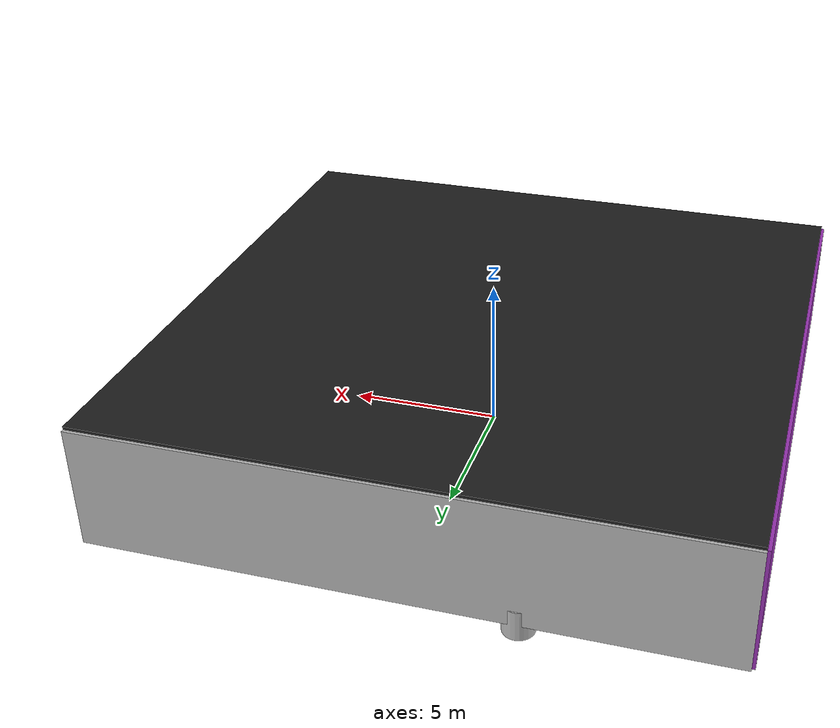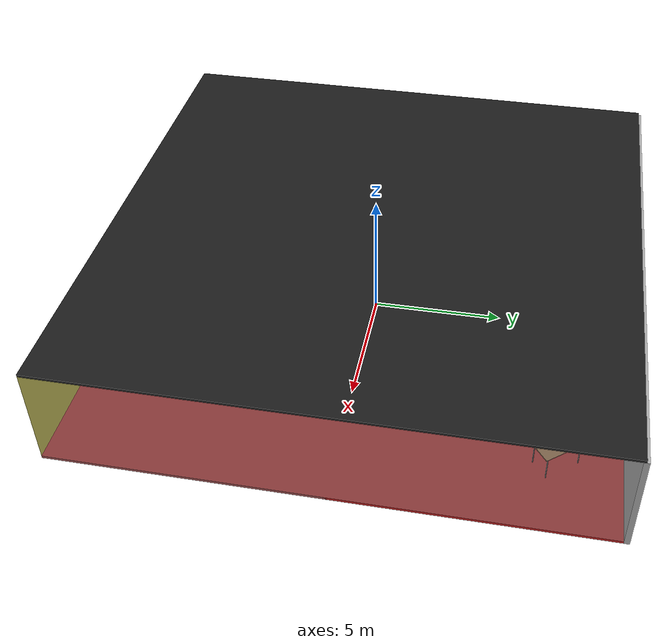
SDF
<sdf version="1.4">
 <world name="default">
  <physics type="ode">
   <max_step_size>0.001</max_step_size>
   <real_time_factor>1</real_time_factor>
   <real_time_update_rate>1000</real_time_update_rate>
   <gravity>0 0 -9.8</gravity>
  </physics>
  <scene><ambient>0.4 0.4 0.4 1</ambient><background>0.7 0.7 0.7 1</background><shadows>1</shadows></scene>
  <model name="Surrounding">
   <static>1</static>
   <link name="Ceiling">
    <collision name="Ceiling_Collision"><geometry><box><size>20 20 0.1</size></box></geometry></collision>
    <visual name="Ceiling_Visual">
     <geometry><box><size>20 20 0.1</size></box></geometry>
     <material>
      <script><uri>file://media/materials/scripts/gazebo.material</uri><name>Gazebo/Black</name></script>
     </material>
    </visual>
    <pose>0 0 4.05 0 0 0</pose>
   </link>
   <link name="Wall_South">
    <collision name="Wall_South_Collision">
     <geometry><box><size>20 0 4</size></box></geometry>
     <pose>0 0 2 0 -0 0</pose>
    </collision>
    <visual name="Wall_South_Visual">
     <pose>0 0 2 0 -0 0</pose>
     <geometry><box><size>20 0 4</size></box></geometry>
     <material>
      <script><uri>file://media/materials/scripts/gazebo.material</uri><name>Gazebo/Yellow</name></script>
     </material>
    </visual>
    <velocity_decay><linear>0</linear><angular>0</angular></velocity_decay>
    <pose>0 -10 0 0 -0 0</pose>
   </link>
   <link name="Wall_East">
    <collision name="Wall_21_Collision">
     <geometry><box><size>20 0 4</size></box></geometry>
     <pose>0 0 2 0 -0 0</pose>
    </collision>
    <visual name="Wall_21_Visual">
     <pose>0 0 2 0 -0 0</pose>
     <geometry><box><size>20 0 4</size></box></geometry>
     <material>
      <script><uri>file://media/materials/scripts/gazebo.material</uri><name>Gazebo/GreyTransparent</name></script>
     </material>
    </visual>
    <velocity_decay><linear>0</linear><angular>0</angular></velocity_decay>
    <pose>10 0 0 0 -0 1.5708</pose>
   </link>
   <link name="Wall_North">
    <collision name="Wall_22_Collision">
     <geometry><box><size>20 0.2 4</size></box></geometry>
     <pose>0 0 2 0 -0 0</pose>
    </collision>
    <visual name="Wall_22_Visual">
     <pose>0 0 2 0 -0 0</pose>
     <geometry><box><size>20 0.2 4</size></box></geometry>
     <material>
      <script><uri>file://media/materials/scripts/gazebo.material</uri><name>Gazebo/PioneerBody</name></script>
     </material>
    </visual>
    <velocity_decay><linear>0</linear><angular>0</angular></velocity_decay>
    <pose>0 10 0 0 -0 0</pose>
   </link>
   <link name="Wall_West">
    <collision name="Wall_23_Collision">
     <geometry><box><size>20 0.2 4</size></box></geometry>
     <pose>0 0 2 0 -0 0</pose>
    </collision>
    <visual name="Wall_23_Visual">
     <pose>0 0 2 0 -0 0</pose>
     <geometry><box><size>20 0.2 4</size></box></geometry>
     <material>
      <script><uri>file://media/materials/scripts/gazebo.material</uri><name>Gazebo/Purple</name></script>
     </material>
    </visual>
    <velocity_decay><linear>0</linear><angular>0</angular></velocity_decay>
    <pose>-10 0 0 0 0 -1.5708</pose>
   </link>
   <link name="Ground_link">
    <collision name="collision">
     <pose>0 0 .05 0 -0 0</pose>
     <geometry><box><size>20 20 0.1</size></box></geometry>
    </collision>
    <visual name="visual">
     <pose>0 0 .05 0 -0 0</pose>
     <geometry><box><size>20 20 0.1</size></box></geometry>
     <material>
      <script><uri>file://media/materials/scripts/gazebo.material</uri><name>Gazebo/RedGlow</name></script>
     </material>
    </visual>
   </link>
   <static>1</static>
  </model>
  <spherical_coordinates>
   <surface_model>EARTH_WGS84</surface_model>
   <latitude_deg>0</latitude_deg>
   <longitude_deg>0</longitude_deg>
   <elevation>0</elevation>
   <heading_deg>0</heading_deg>
  </spherical_coordinates>
  <light name="lightball_0" type="diffuse">
   <diffuse>0.8 0.8 0.8 1</diffuse>
   <specular>0.2 0.2 0.2 1</specular>
   <attenuation>
    <range>100</range>
    <constant>0.7</constant>
    <linear>0.01</linear>
    <quadratic>0.001</quadratic>
   </attenuation>
   <direction>-0.5 0.1 -0.9</direction>
   <pose>8.07591738034 4.89583031557 2.64531577721 0 0 0</pose>
  </light>
  <include><uri>model://table</uri><pose>-4.70475281671 -1.90079465788 0 0 0 0.479456385261</pose></include>
  <include>
   <uri>model://textured_shapes</uri>
   <pose>-2.6622635561 8.39241674369 0 0 0 0.580295244799</pose>
  </include>
  <include>
   <uri>model://textured_shapes</uri>
   <pose>1.54794492513 4.6290963053 0 0 0 2.88488669442</pose>
  </include>
  <include><uri>model://table</uri><pose>4.24454757522 0.635842117656 0 0 0 0.77434111603</pose></include>
  <include><uri>model://table</uri><pose>7.11964792218 7.56860241014 0 0 0 2.23995004246</pose></include>
 </world>
</sdf>

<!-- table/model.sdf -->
<sdf version="1.5">
  <model name="table">
    <static>true</static>
    <link name="link">
      <collision name="surface">
        <pose>0 0 1.0 0 0 0</pose>
        <geometry>
          <box>
            <size>1.5 0.8 0.03</size>
          </box>
        </geometry>
        <surface>
          <friction>
            <ode>
              <mu>0.6</mu>
              <mu2>0.6</mu2>
            </ode>
          </friction>
        </surface>
      </collision>
      <visual name="visual1">
        <pose>0 0 1.0 0 0 0</pose>
        <geometry>
          <box>
            <size>1.5 0.8 0.03</size>
          </box>
        </geometry>
        <material>
          <script>
            <uri>model://media/materials/scripts/gazebo.material</uri>
            <name>Gazebo/Wood</name>
          </script>
        </material>
      </visual>
      <collision name="front_left_leg">
        <pose>0.68 0.38 0.5 0 0 0</pose>
        <geometry>
          <cylinder>
            <radius>0.02</radius>
            <length>1.0</length>
          </cylinder>
        </geometry>
      </collision>
      <visual name="front_left_leg">
        <pose>0.68 0.38 0.5 0 0 0</pose>
        <geometry>
          <cylinder>
            <radius>0.02</radius>
            <length>1.0</length>
          </cylinder>
        </geometry>
        <material>
          <script>
            <uri>model://media/materials/scripts/gazebo.material</uri>
            <name>Gazebo/Grey</name>
          </script>
        </material>
      </visual>
      <collision name="front_right_leg">
        <pose>0.68 -0.38 0.5 0 0 0</pose>
        <geometry>
          <cylinder>
            <radius>0.02</radius>
            <length>1.0</length>
          </cylinder>
        </geometry>
      </collision>
      <visual name="front_right_leg">
        <pose>0.68 -0.38 0.5 0 0 0</pose>
        <geometry>
          <cylinder>
            <radius>0.02</radius>
            <length>1.0</length>
          </cylinder>
        </geometry>
        <material>
          <script>
            <uri>model://media/materials/scripts/gazebo.material</uri>
            <name>Gazebo/Grey</name>
          </script>
        </material>
      </visual>
      <collision name="back_right_leg">
        <pose>-0.68 -0.38 0.5 0 0 0</pose>
        <geometry>
          <cylinder>
            <radius>0.02</radius>
            <length>1.0</length>
          </cylinder>
        </geometry>
      </collision>
      <visual name="back_right_leg">
        <pose>-0.68 -0.38 0.5 0 0 0</pose>
        <geometry>
          <cylinder>
            <radius>0.02</radius>
            <length>1.0</length>
          </cylinder>
        </geometry>
        <material>
          <script>
            <uri>model://media/materials/scripts/gazebo.material</uri>
            <name>Gazebo/Grey</name>
          </script>
        </material>
      </visual>
      <collision name="back_left_leg">
        <pose>-0.68 0.38 0.5 0 0 0</pose>
        <geometry>
          <cylinder>
            <radius>0.02</radius>
            <length>1.0</length>
          </cylinder>
        </geometry>
      </collision>
      <visual name="back_left_leg">
        <pose>-0.68 0.38 0.5 0 0 0</pose>
        <geometry>
          <cylinder>
            <radius>0.02</radius>
            <length>1.0</length>
          </cylinder>
        </geometry>
        <material>
          <script>
            <uri>model://media/materials/scripts/gazebo.material</uri>
            <name>Gazebo/Grey</name>
          </script>
        </material>
      </visual>
    </link>
  </model>
</sdf>

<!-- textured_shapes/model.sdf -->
<sdf version="1.6">
  <model name="textured_shapes">
    <pose>0 0 0.5 0 0 0</pose>
    <link name="box">
      <pose>0 -1.5 0 0 0 0</pose>
      <collision name="collision">
        <geometry>
          <box>
            <size>1 1 1</size>
          </box>
        </geometry>
      </collision>
      <visual name="visual">
        <geometry>
          <box>
            <size>1 1 1</size>
          </box>
        </geometry>
        <material>
          <script>
            <uri>model://../model_source/models/textured_shapes/materials/scripts</uri>
            <uri>model://../model_source/models/textured_shapes/materials/textures</uri>
            <name>TexturedShape/Squares</name>
          </script>
        </material>
      </visual>
    </link>
    <link name="sphere">
      <collision name="collision">
        <geometry>
          <sphere>
            <radius>0.5</radius>
          </sphere>
        </geometry>
      </collision>
      <visual name="visual">
        <geometry>
          <sphere>
            <radius>0.5</radius>
          </sphere>
        </geometry>
        <material>
          <script>
            <uri>model://../model_source/models/textured_shapes/materials/scripts</uri>
            <uri>model://../model_source/models/textured_shapes/materials/textures</uri>
            <name>TexturedShape/Squares</name>
          </script>
        </material>
      </visual>
    </link>
    <link name="cylinder">
      <pose>0 1.5 0 0 0 0</pose>
      <collision name="collision">
        <geometry>
          <cylinder>
            <radius>0.5</radius>
            <length>1</length>
          </cylinder>
        </geometry>
      </collision>
      <visual name="visual">
        <geometry>
          <cylinder>
            <radius>0.5</radius>
            <length>1</length>
          </cylinder>
        </geometry>
        <material>
          <script>
            <uri>model://../model_source/models/textured_shapes/materials/scripts</uri>
            <uri>model://../model_source/models/textured_shapes/materials/textures</uri>
            <name>TexturedShape/Squares</name>
          </script>
        </material>
      </visual>
    </link>
  </model>
</sdf>
